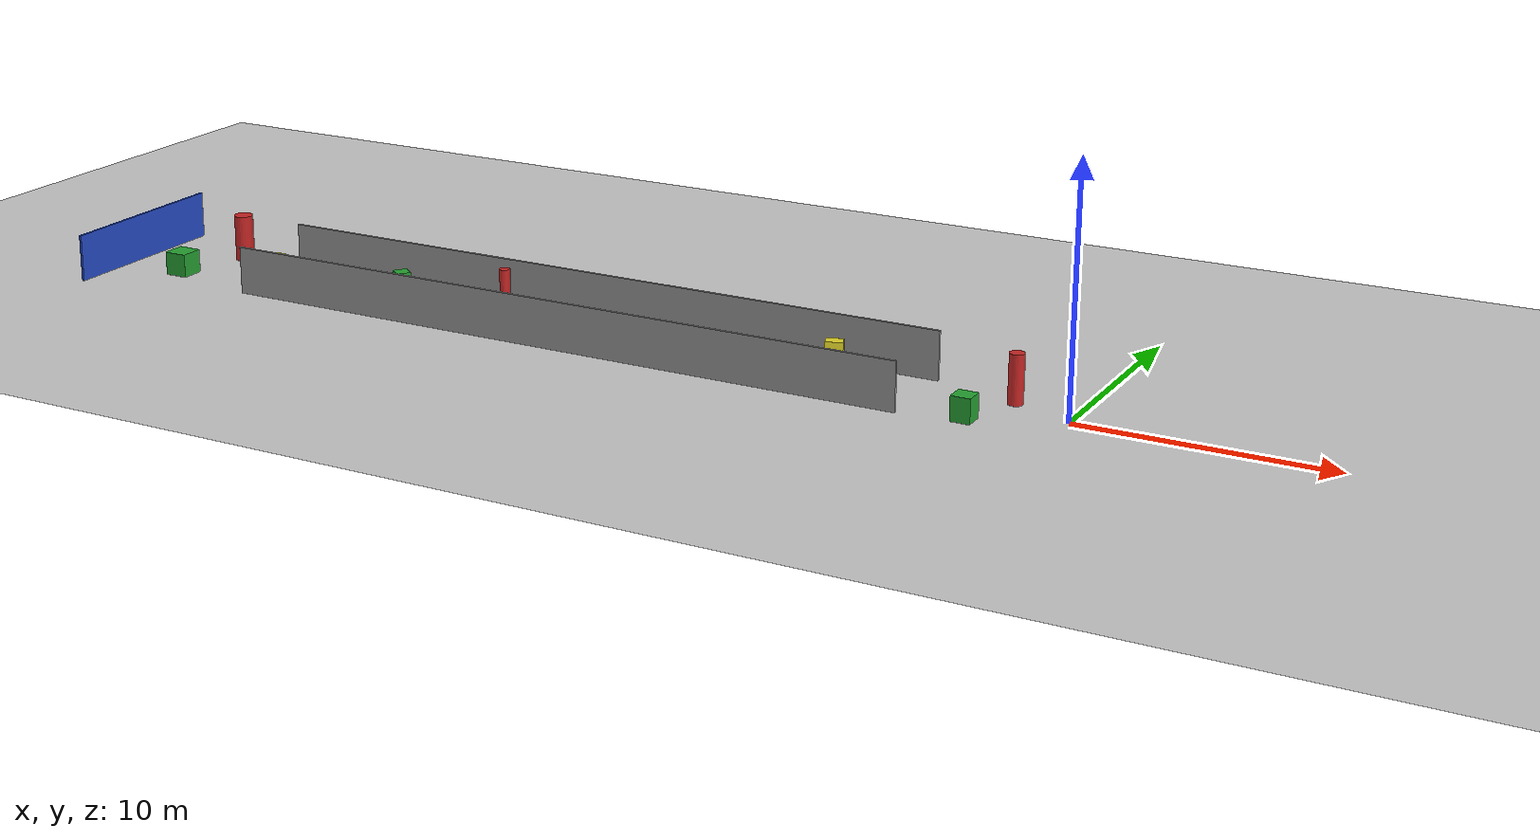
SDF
<?xml version="1.0" ?>
<sdf version="1.6">
  <world name="degeneracy_test_world">
    <include><uri>model://sun</uri></include>
    <include><uri>model://ground_plane</uri></include>

    <model name="start_feature_cyl_1">
      <static>true</static>
      <pose>-2.5 1.0 1.0 0 0 0</pose> <link name="link">
        <collision name="collision"><geometry><cylinder><radius>0.3</radius><length>2</length></cylinder></geometry></collision>
        <visual name="visual"><geometry><cylinder><radius>0.3</radius><length>2</length></cylinder></geometry><material><script><name>Gazebo/Red</name></script></material></visual>
      </link>
    </model>

    <model name="start_feature_box_1">
      <static>true</static>
      <pose>-3.5 -1.5 0.5 0 0 0</pose> <link name="link">
        <collision name="collision"><geometry><box><size>0.8 0.8 1.0</size></box></geometry></collision>
        <visual name="visual"><geometry><box><size>0.8 0.8 1.0</size></box></geometry><material><script><name>Gazebo/Green</name></script></material></visual>
      </link>
    </model>

    <model name="corridor_left_wall">
      <static>true</static>
      <pose>-21.0 2.0 1.0 0 0 0</pose> <link name="link">
        <collision name="collision"><geometry><box><size>30.0 0.1 2.0</size></box></geometry></collision>
        <visual name="visual"><geometry><box><size>30.0 0.1 2.0</size></box></geometry><material><script><name>Gazebo/Grey</name></script></material></visual>
      </link>
    </model>

    <model name="corridor_right_wall">
      <static>true</static>
      <pose>-21.0 -2.0 1.0 0 0 0</pose>
      <link name="link">
        <collision name="collision"><geometry><box><size>30.0 0.1 2.0</size></box></geometry></collision>
        <visual name="visual"><geometry><box><size>30.0 0.1 2.0</size></box></geometry><material><script><name>Gazebo/Grey</name></script></material></visual>
      </link>
    </model>

    <model name="mid_feature_box_left_1">
      <static>true</static>
      <pose>-10.0 1.2 0.6 0 0 0.35</pose>
      <link name="link">
        <collision name="collision"><geometry><box><size>0.7 0.5 1.2</size></box></geometry></collision>
        <visual name="visual"><geometry><box><size>0.7 0.5 1.2</size></box></geometry><material><script><name>Gazebo/Yellow</name></script></material></visual>
      </link>
    </model>

    <model name="mid_feature_cyl_right_1">
      <static>true</static>
      <pose>-14.5 -1.25 0.75 0 0 0</pose>
      <link name="link">
        <collision name="collision"><geometry><cylinder><radius>0.28</radius><length>1.5</length></cylinder></geometry></collision>
        <visual name="visual"><geometry><cylinder><radius>0.28</radius><length>1.5</length></cylinder></geometry><material><script><name>Gazebo/Yellow</name></script></material></visual>
      </link>
    </model>

    <model name="mid_feature_box_right_2">
      <static>true</static>
      <pose>-20.0 -1.15 0.7 0 0 -0.5</pose>
      <link name="link">
        <collision name="collision"><geometry><box><size>1.0 0.45 1.4</size></box></geometry></collision>
        <visual name="visual"><geometry><box><size>1.0 0.45 1.4</size></box></geometry><material><script><name>Gazebo/Blue</name></script></material></visual>
      </link>
    </model>

    <model name="mid_feature_cyl_left_2">
      <static>true</static>
      <pose>-25.0 1.3 0.9 0 0 0</pose>
      <link name="link">
        <collision name="collision"><geometry><cylinder><radius>0.22</radius><length>1.8</length></cylinder></geometry></collision>
        <visual name="visual"><geometry><cylinder><radius>0.22</radius><length>1.8</length></cylinder></geometry><material><script><name>Gazebo/Red</name></script></material></visual>
      </link>
    </model>

    <model name="mid_feature_box_left_3">
      <static>true</static>
      <pose>-30.0 1.1 0.5 0 0 0.9</pose>
      <link name="link">
        <collision name="collision"><geometry><box><size>0.6 0.6 1.0</size></box></geometry></collision>
        <visual name="visual"><geometry><box><size>0.6 0.6 1.0</size></box></geometry><material><script><name>Gazebo/Green</name></script></material></visual>
      </link>
    </model>

    <model name="mid_feature_box_right_3">
      <static>true</static>
      <pose>-35.0 -1.1 0.8 0 0 0.2</pose>
      <link name="link">
        <collision name="collision"><geometry><box><size>0.9 0.5 1.6</size></box></geometry></collision>
        <visual name="visual"><geometry><box><size>0.9 0.5 1.6</size></box></geometry><material><script><name>Gazebo/Yellow</name></script></material></visual>
      </link>
    </model>

    <model name="final_feature_cyl_1">
      <static>true</static>
      <pose>-39.0 2.0 1.0 0 0 0</pose> <link name="link">
        <collision name="collision"><geometry><cylinder><radius>0.4</radius><length>2</length></cylinder></geometry></collision>
        <visual name="visual"><geometry><cylinder><radius>0.4</radius><length>2</length></cylinder></geometry><material><script><name>Gazebo/Red</name></script></material></visual>
      </link>
    </model>

    <model name="final_feature_box_1">
      <static>true</static>
      <pose>-40.0 -1.0 0.5 0 0 0</pose> <link name="link">
        <collision name="collision"><geometry><box><size>1 1 1</size></box></geometry></collision>
        <visual name="visual"><geometry><box><size>1 1 1</size></box></geometry><material><script><name>Gazebo/Green</name></script></material></visual>
      </link>
    </model>

    <model name="goal_end_wall">
      <static>true</static>
      <pose>-43.0 0 1.0 0 0 0</pose> <link name="link">
        <collision name="collision"><geometry><box><size>0.1 8.0 2.0</size></box></geometry></collision> <visual name="visual"><geometry><box><size>0.1 8.0 2.0</size></box></geometry><material><script><name>Gazebo/Blue</name></script></material></visual>
      </link>
    </model>

  </world>
</sdf>
